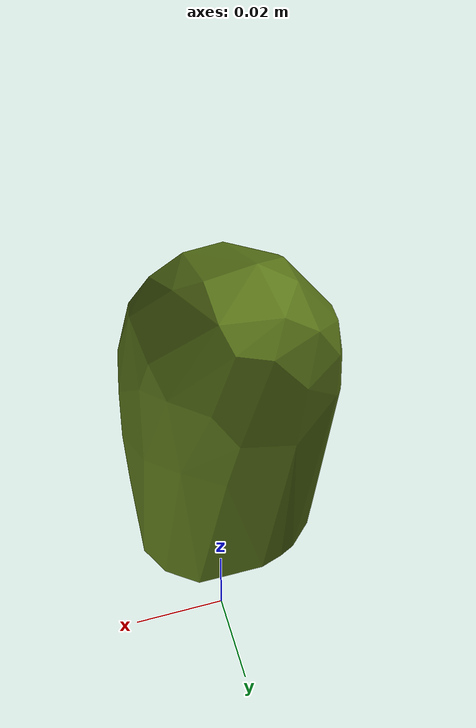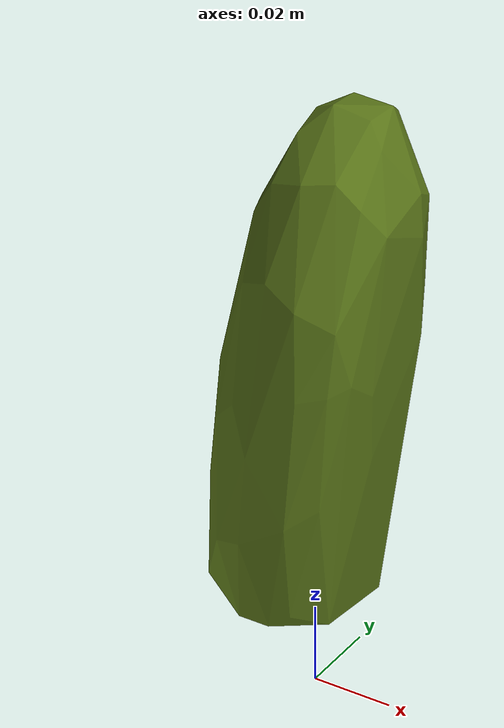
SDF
<sdf version="1.7">
  <model name="Cucumber">
    <link name="base_link">
      <inertial>
        <mass>0.18</mass>
        <inertia>
          <ixx>1.238e-03</ixx>
          <ixy>0.000e+00</ixy>
          <ixz>0.000e+00</ixz>
          <iyy>1.216e-03</iyy>
          <iyz>0.000e+00</iyz>
          <izz>6.553e-05</izz>
        </inertia>
      </inertial>
      <visual name="Cucumber_visual">
        <geometry>
          <mesh>
            <scale>1 1 1</scale>
            <uri>Cucumber_processed_simple_vis.obj</uri>
          </mesh>
        </geometry>
        <material>
          <diffuse>0.36 0.47 0.098 1.0</diffuse>
        </material>
      </visual>
      <collision name="collision_0000">
        <geometry>
          <mesh>
            <uri>Cucumber_processed_parts/Cucumber_processed_convex_piece_000.obj</uri>
            <drake:declare_convex xmlns:drake="drake.mit.edu"/>
          </mesh>
        </geometry>
        <drake:proximity_properties>
          <drake:mu_dynamic>0.5</drake:mu_dynamic>
          <drake:mu_static>0.5</drake:mu_static>
          <drake:mesh_resolution_hint>0.02</drake:mesh_resolution_hint>
          <drake:elastic_modulus>0.1e9</drake:elastic_modulus>
          <drake:hunt_crossley_dissipation>5.0</drake:hunt_crossley_dissipation>
          <drake:rigid_hydroelastic/>
        </drake:proximity_properties >
      </collision>
      <collision name="collision_0001">
        <geometry>
          <mesh>
            <uri>Cucumber_processed_parts/Cucumber_processed_convex_piece_001.obj</uri>
            <drake:declare_convex xmlns:drake="drake.mit.edu"/>
          </mesh>
        </geometry>
        <surface>
          <friction>
            <ode>
              <mu>5</mu>
              <mu2>5</mu2>
            </ode>
          </friction>
        </surface>
        <drake:proximity_properties>
          <drake:mu_dynamic>0.5</drake:mu_dynamic>
          <drake:mu_static>0.5</drake:mu_static>
          <drake:mesh_resolution_hint>0.02</drake:mesh_resolution_hint>
          <drake:elastic_modulus>0.1e9</drake:elastic_modulus>
          <drake:hunt_crossley_dissipation>5.0</drake:hunt_crossley_dissipation>
          <drake:rigid_hydroelastic/>
        </drake:proximity_properties>
      </collision>
    </link>
  </model>
</sdf>
